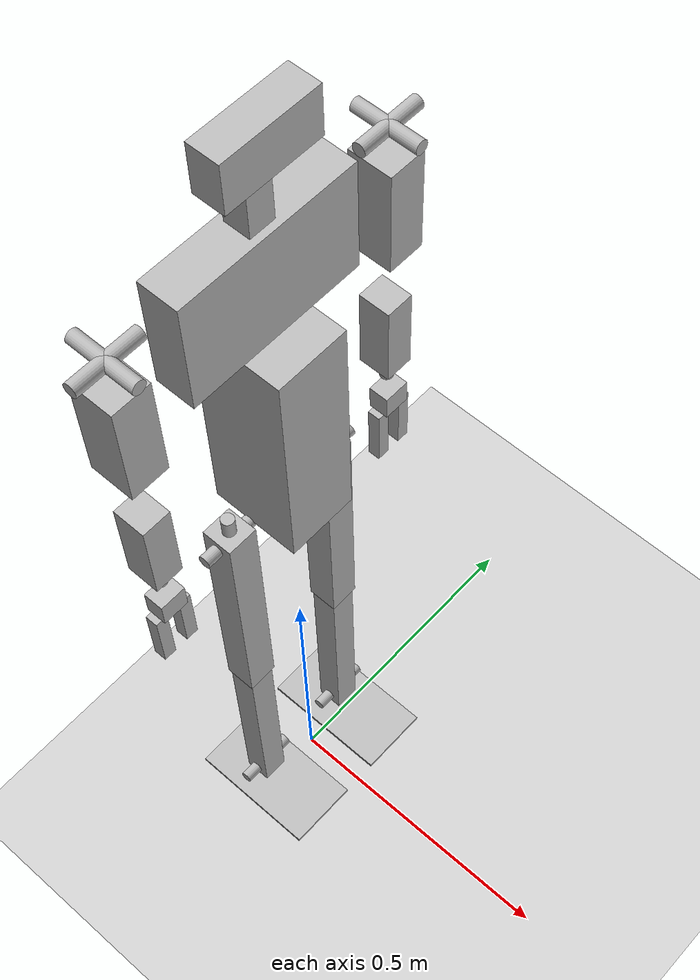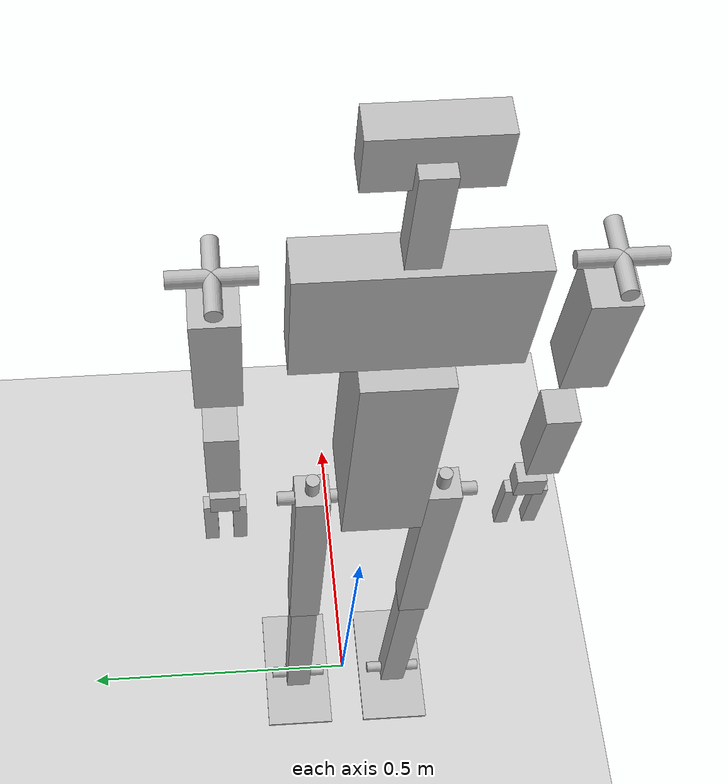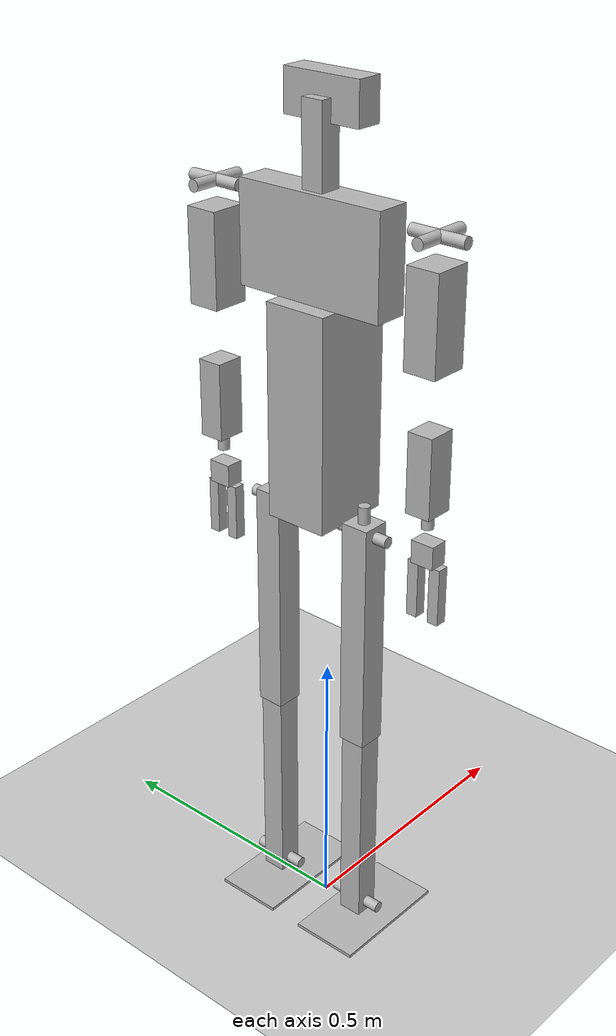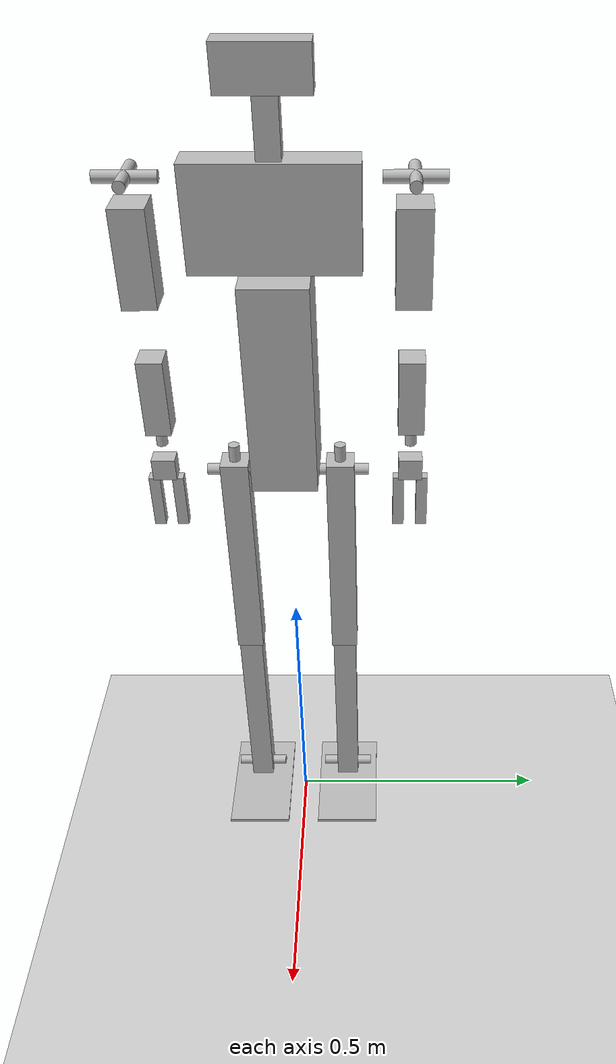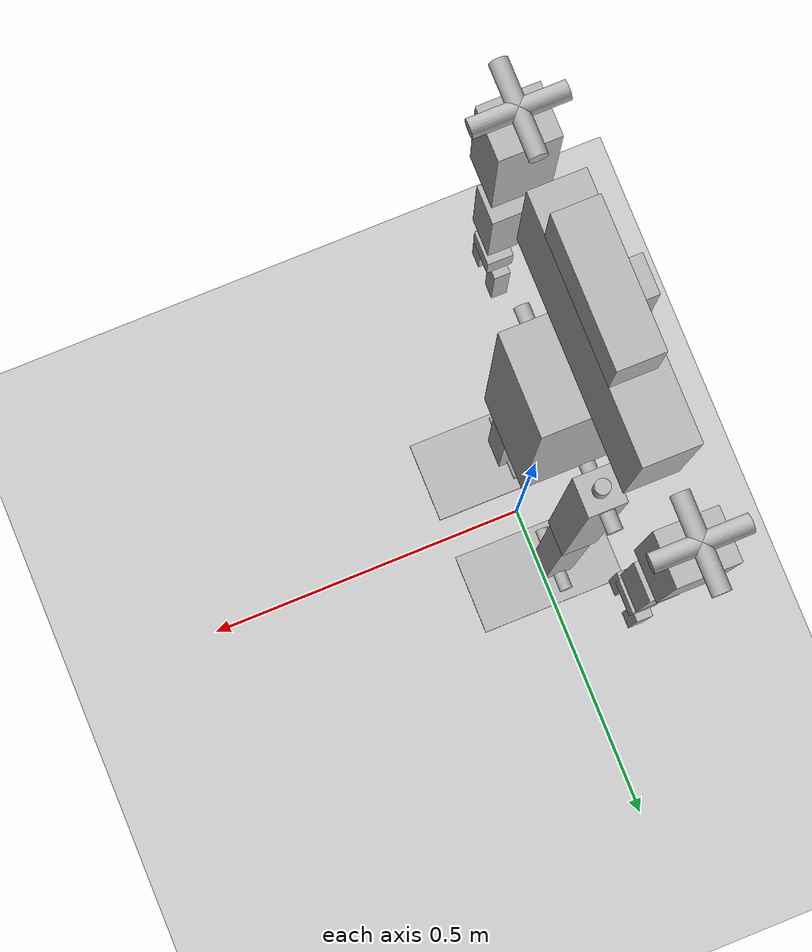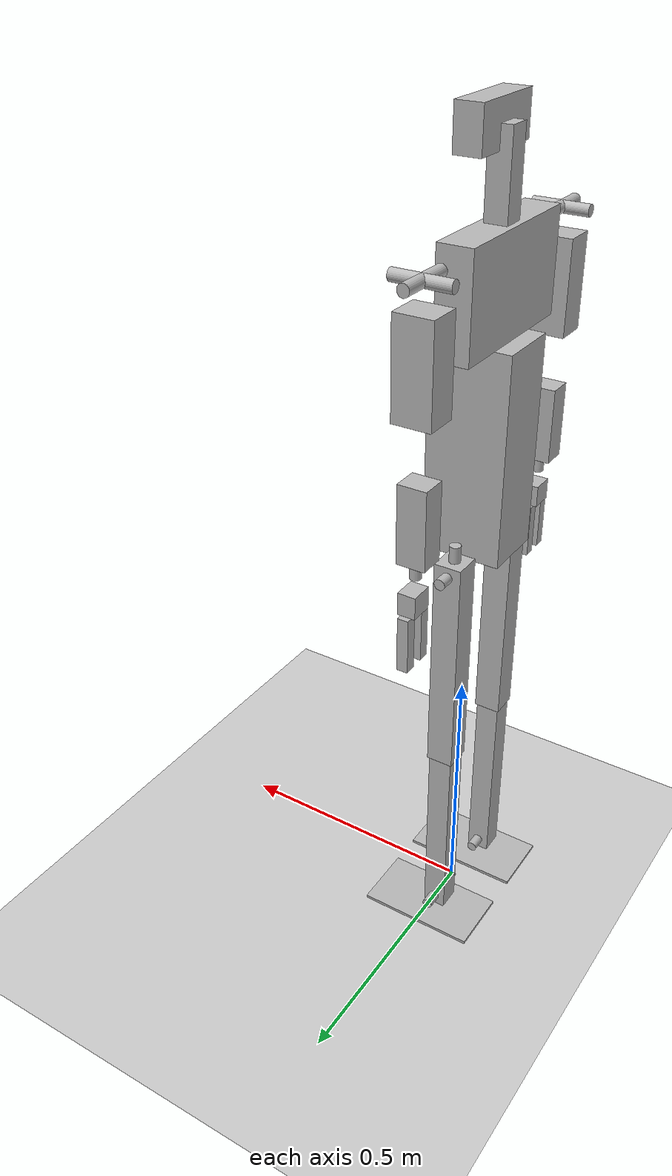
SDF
<?xml version="1.0" ?>
<sdf version="1.4">
<world name="default">

<plugin name="gz_world_manager" filename="libgz_world_manager.so" />

<physics type="ode">
	<gravity>0 0 -9.81</gravity>
	<ode>
		<solver>
			<type>quick</type>
			<iters>90</iters>
			<sor>1.2</sor>
		</solver>
		<constraints>
			<cfm>0.0</cfm>
			<erp>0.2</erp>
			<contact_max_correcting_vel>100.0</contact_max_correcting_vel>
			<contact_surface_layer>0.0</contact_surface_layer>
		</constraints>
	</ode>
	<real_time_update_rate>-1</real_time_update_rate>
	<max_step_size>0.000334</max_step_size>
</physics>

<!-- A ground plane -->
<include>
  <uri>model://ground_plane</uri>
</include>

<!-- A global light source -->
<include>
  <uri>model://sun</uri>
</include>

<include>
  <uri>model://ash</uri>
</include>

</world>
</sdf>

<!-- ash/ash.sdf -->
<sdf version="1.4">
<model name="ash">
	<plugin name="gz_comms_manager" filename="libgz_comms_manager.so" />
	<pose>0 0 0 0 0 0</pose>
	<static>false</static>
	<link name="torso">
		<pose>-.01 0 .997 0 0 0</pose>
		<collision name="torso_collision">
			<geometry>
				<box>
					<size>.143 .114 .367</size>
				</box>
			</geometry>
		</collision>
		<visual name="torso_visual">
			<geometry>
				<box>
					<size>.143 .114 .367</size>
				</box>
			</geometry>
		</visual>
		<inertial>
			<pose>-0.007635463 0.000532902 0.011170676 0 0 0</pose>
			<mass>8.929601491</mass>
			<inertia>
				<ixx>0.160370285</ixx>
				<iyy>0.112425821</iyy>
				<izz>0.106598912</izz>
				<iyz>0.000392533</iyz>
				<ixz>-0.002028322</ixz>
				<ixy>0.000446463</ixy>
			</inertia>
		</inertial>
		<sensor name="imu_sensor" type="imu">
			<always_on>1</always_on>
			<visualize>1</visualize>
			<topic>imu_sensor</topic>
		</sensor>
	</link>

	<link name="l_thigh">
		<pose>-.021 .094 .618 0 0 0</pose>
		<collision name="l_thigh_collision">
			<geometry>
				<box>
					<size>.05 .05 .419</size>
				</box>
			</geometry>
		</collision>
		<visual name="l_thigh_visual">
			<geometry>
				<box>
					<size>.05 .05 .419</size>
				</box>
			</geometry>
		</visual>
		<inertial>
			<pose>-0.011097569 0.018874678 0.032768668 0 0 0</pose>
			<mass>2.298881991</mass>
			<inertia>
				<ixx>0.021768307</ixx>
				<iyy>0.024906869</iyy>
				<izz>0.008717440</izz>
				<iyz>-0.001607937</iyz>
				<ixz>-0.001277535</ixz>
				<ixy>-0.002003306</ixy>
			</inertia>
		</inertial>
	</link>

	<link name="r_thigh">
		<pose>-.021 -.094 .618 0 0 0</pose>
		<collision name="r_thigh_collision">
			<geometry>
				<box>
					<size>.05 .05 .419</size>
				</box>
			</geometry>
		</collision>
		<visual name="r_thigh_visual">
			<geometry>
				<box>
					<size>.05 .05 .419</size>
				</box>
			</geometry>
		</visual>
		<inertial>
			<pose>-0.011097569 -0.018874678 0.032768668 0 0 0</pose>
			<mass>2.298881991</mass>
			<inertia>
				<ixx>0.021768307</ixx>
				<iyy>0.024906869</iyy>
				<izz>0.008717440</izz>
				<iyz>0.001607937</iyz>
				<ixz>-0.001277535</ixz>
				<ixy>0.002003306</ixy>
			</inertia>
		</inertial>
	</link>

	<link name="l_shin">
		<pose>-.021 .094 .239 0 0 0</pose>
		<collision name="l_shin_collision">
			<geometry>
				<box>
					<size>.044 .044 .42</size>
				</box>
			</geometry>
		</collision>
		<visual name="l_shin_visual">
			<geometry>
				<box>
					<size>.044 .044 .42</size>
				</box>
			</geometry>
		</visual>
		<inertial>
			<pose>-0.028153381 0.002475222 0.063721119 0 0 0</pose>
			<mass>2.239063829</mass>
			<inertia>
				<ixx>0.021743467</ixx>
				<iyy>0.027022394</iyy>
				<izz>0.010582813</izz>
				<iyz>-0.000035631</iyz>
				<ixz>0.004888637</ixz>
				<ixy>0.000055998</ixy>
			</inertia>
		</inertial>
	</link>

	<link name="r_shin">
		<pose>-.021 -.094 .239 0 0 0</pose>
		<collision name="r_shin_collision">
			<geometry>
				<box>
					<size>.044 .044 .42</size>
				</box>
			</geometry>
		</collision>
		<visual name="r_shin_visual">
			<geometry>
				<box>
					<size>.044 .044 .42</size>
				</box>
			</geometry>
		</visual>
		<inertial>
			<pose>-0.028153381 -0.002475222 0.063721119 0 0 0</pose>
			<mass>2.239063829</mass>
			<inertia>
				<ixx>0.021743467</ixx>
				<iyy>0.027022394</iyy>
				<izz>0.010582813</izz>
				<iyz>-0.000035631</iyz>
				<ixz>0.004888637</ixz>
				<ixy>0.000055998</ixy>
			</inertia>
		</inertial>
	</link>

	<link name="l_foot">
		<pose>0 .094 .003 0 0 0</pose>
		<collision name="l_foot_collision">
			<geometry>
				<box>
					<size>.23 .125 .006</size>
				</box>
			</geometry>
			<!-- From atlas model -->
			<surface>
				<friction>
					<ode>
						<mu>0.9</mu>
						<mu2>0.9</mu2>
						<fdir1>1 0 0</fdir1>
					</ode>
				</friction>
				<contact>
					<ode>
						<max_vel>1.0</max_vel>
						<min_depth>0.003</min_depth>
					</ode>
				</contact>
			</surface>
		</collision>
		<visual name="l_foot_visual">
			<geometry>
				<box>
					<size>.23 .125 .006</size>
				</box>
			</geometry>
		</visual>
		<inertial>
			<pose>-0.019883971 0.002275946 0.016387485 0 0 0</pose>
			<mass>0.589284444</mass>
			<inertia>
				<ixx>0.000545429</ixx>
				<iyy>0.001825441</iyy>
				<izz>0.002054387</izz>
				<iyz>-0.000001187</iyz>
				<ixz>-0.000179602</ixz>
				<ixy>0.000004512</ixy>
			</inertia>
		</inertial>
		<sensor name="l_foot_contact_sensor" type="contact">
			<always_on>1</always_on>
			<contact>
				<collision>l_foot_collision</collision>
			</contact>
		</sensor>
	</link>

	<link name="r_foot">
		<pose>0 -.094 .003 0 0 0</pose>
		<collision name="r_foot_collision">
			<geometry>
				<box>
					<size>.23 .125 .006</size>
				</box>
			</geometry>
			<!-- From atlas model -->
			<surface>
				<friction>
					<ode>
						<mu>0.9</mu>
						<mu2>0.9</mu2>
						<fdir1>1 0 0</fdir1>
					</ode>
				</friction>
				<contact>
					<ode>
						<max_vel>1.0</max_vel>
						<min_depth>0.003</min_depth>
					</ode>
				</contact>
			</surface>
		</collision>
		<visual name="r_foot_visual">
			<geometry>
				<box>
					<size>.23 .125 .006</size>
				</box>
			</geometry>
		</visual>
		<inertial>
			<pose>-0.019883971 -0.002275946 0.016387485 0 0 0</pose>
			<mass>0.589284444</mass>
			<inertia>
				<ixx>0.000545429</ixx>
				<iyy>0.001825441</iyy>
				<izz>0.002054387</izz>
				<iyz>-0.000001187</iyz>
				<ixz>-0.000179602</ixz>
				<ixy>0.000004512</ixy>
			</inertia>
		</inertial>
		<sensor name="r_foot_contact_sensor" type="contact">
			<always_on>1</always_on>
			<contact>
				<collision>r_foot_collision</collision>
			</contact>
		</sensor>
	</link>

	<link name="l_hip_yaw_trunnion">
		<pose>-.021 .094 .808 0 0 0</pose>
		<!-- Axis = "z", -->
		<collision name="l_hip_yaw_trunnion_collision">
			<geometry>
				<cylinder>
					<radius>0.01</radius>
					<length>0.1</length>
				</cylinder>
			</geometry>
		</collision>
		<visual name="l_hip_yaw_trunnion_visual">
			<geometry>
				<cylinder>
					<radius>0.01</radius>
					<length>0.1</length>
				</cylinder>
			</geometry>
		</visual>
		<inertial>
			<mass>0.1</mass>
			<inertia>
				<ixx>8.5833333333333e-05</ixx>
				<iyy>8.5833333333333e-05</iyy>
				<izz>5e-06</izz>
				<ixy>0</ixy>
				<ixz>0</ixz>
				<iyz>0</iyz>
			</inertia>
		</inertial>
	</link>

	<link name="r_hip_yaw_trunnion">
		<pose>-.021 -.094 .808 0 0 0</pose>
		<!-- Axis = "z", -->
		<collision name="r_hip_yaw_trunnion_collision">
			<geometry>
				<cylinder>
					<radius>0.01</radius>
					<length>0.1</length>
				</cylinder>
			</geometry>
		</collision>
		<visual name="r_hip_yaw_trunnion_visual">
			<geometry>
				<cylinder>
					<radius>0.01</radius>
					<length>0.1</length>
				</cylinder>
			</geometry>
		</visual>
		<inertial>
			<mass>0.1</mass>
			<inertia>
				<ixx>8.5833333333333e-05</ixx>
				<iyy>8.5833333333333e-05</iyy>
				<izz>5e-06</izz>
				<ixy>0</ixy>
				<ixz>0</ixz>
				<iyz>0</iyz>
			</inertia>
		</inertial>
	</link>

	<link name="l_hip_pitch_trunnion">
		<pose>-.021 .094 .808 0 0 0</pose>
		<!-- Axis = "y", -->
		<collision name="l_hip_pitch_trunnion_collision">
			<pose>0 0 0 1.57079632679 0 0</pose>
			<geometry>
				<cylinder>
					<radius>0.01</radius>
					<length>0.1</length>
				</cylinder>
			</geometry>
		</collision>
		<visual name="l_hip_pitch_trunnion_visual">
			<pose>0 0 0 1.57079632679 0 0</pose>
			<geometry>
				<cylinder>
					<radius>0.01</radius>
					<length>0.1</length>
				</cylinder>
			</geometry>
		</visual>
		<inertial>
			<mass>0.1</mass>
			<inertia>
				<ixx>8.5833333333333e-05</ixx>
				<iyy>5e-06</iyy>
				<izz>8.5833333333333e-05</izz>
				<ixy>0</ixy>
				<ixz>0</ixz>
				<iyz>0</iyz>
			</inertia>
		</inertial>
	</link>

	<link name="r_hip_pitch_trunnion">
		<pose>-.021 -.094 .808 0 0 0</pose>
		<!-- Axis = "y", -->
		<collision name="r_hip_pitch_trunnion_collision">
			<pose>0 0 0 1.57079632679 0 0</pose>
			<geometry>
				<cylinder>
					<radius>0.01</radius>
					<length>0.1</length>
				</cylinder>
			</geometry>
		</collision>
		<visual name="r_hip_pitch_trunnion_visual">
			<pose>0 0 0 1.57079632679 0 0</pose>
			<geometry>
				<cylinder>
					<radius>0.01</radius>
					<length>0.1</length>
				</cylinder>
			</geometry>
		</visual>
		<inertial>
			<mass>0.1</mass>
			<inertia>
				<ixx>8.5833333333333e-05</ixx>
				<iyy>5e-06</iyy>
				<izz>8.5833333333333e-05</izz>
				<ixy>0</ixy>
				<ixz>0</ixz>
				<iyz>0</iyz>
			</inertia>
		</inertial>
	</link>

	<link name="l_ankle_pitch_trunnion">
		<pose>-.021 .094 .049 0 0 0</pose>
		<!-- Axis = "y", -->
		<collision name="l_ankle_pitch_trunnion_collision">
			<pose>0 0 0 1.57079632679 0 0</pose>
			<geometry>
				<cylinder>
					<radius>0.01</radius>
					<length>0.1</length>
				</cylinder>
			</geometry>
		</collision>
		<visual name="l_ankle_pitch_trunnion_visual">
			<pose>0 0 0 1.57079632679 0 0</pose>
			<geometry>
				<cylinder>
					<radius>0.01</radius>
					<length>0.1</length>
				</cylinder>
			</geometry>
		</visual>
		<inertial>
			<mass>0.1</mass>
			<inertia>
				<ixx>8.5833333333333e-05</ixx>
				<iyy>5e-06</iyy>
				<izz>8.5833333333333e-05</izz>
				<ixy>0</ixy>
				<ixz>0</ixz>
				<iyz>0</iyz>
			</inertia>
		</inertial>
	</link>

	<link name="r_ankle_pitch_trunnion">
		<pose>-.021 -.094 .049 0 0 0</pose>
		<!-- Axis = "y", -->
		<collision name="r_ankle_pitch_trunnion_collision">
			<pose>0 0 0 1.57079632679 0 0</pose>
			<geometry>
				<cylinder>
					<radius>0.01</radius>
					<length>0.1</length>
				</cylinder>
			</geometry>
		</collision>
		<visual name="r_ankle_pitch_trunnion_visual">
			<pose>0 0 0 1.57079632679 0 0</pose>
			<geometry>
				<cylinder>
					<radius>0.01</radius>
					<length>0.1</length>
				</cylinder>
			</geometry>
		</visual>
		<inertial>
			<mass>0.1</mass>
			<inertia>
				<ixx>8.5833333333333e-05</ixx>
				<iyy>5e-06</iyy>
				<izz>8.5833333333333e-05</izz>
				<ixy>0</ixy>
				<ixz>0</ixz>
				<iyz>0</iyz>
			</inertia>
		</inertial>
	</link>

	<joint name="l_hip_yaw" type="revolute">
		<parent>
			torso
		</parent>
		<child>
			l_hip_yaw_trunnion
		</child>
		<axis>
			<xyz>0 0 1</xyz>
			<limit>
				<lower>-0.436332313</lower>
				<upper>0.1745329252</upper>
				<effort>300</effort>
				<velocity>12</velocity>
			</limit>
			<dynamics>
				<damping>1.0</damping>
				<friction>0</friction>
			</dynamics>
		</axis>
		<physics>
			<ode>
				<cfm_damping>1</cfm_damping>
			</ode>
		</physics>
	</joint>

	<joint name="r_hip_yaw" type="revolute">
		<parent>
			torso
		</parent>
		<child>
			r_hip_yaw_trunnion
		</child>
		<axis>
			<xyz>0 0 1</xyz>
			<limit>
				<lower>-0.436332313</lower>
				<upper>0.1745329252</upper>
				<effort>300</effort>
				<velocity>12</velocity>
			</limit>
			<dynamics>
				<damping>1.0</damping>
				<friction>0</friction>
			</dynamics>
		</axis>
		<physics>
			<ode>
				<cfm_damping>1</cfm_damping>
			</ode>
		</physics>
	</joint>

	<joint name="l_hip_roll" type="revolute">
		<parent>
			l_hip_yaw_trunnion
		</parent>
		<child>
			l_hip_pitch_trunnion
		</child>
		<axis>
			<xyz>1 0 0</xyz>
			<limit>
				<lower>-0.401425728</lower>
				<upper>0.401425728</upper>
				<effort>300</effort>
				<velocity>12</velocity>
			</limit>
			<dynamics>
				<damping>1.0</damping>
				<friction>0</friction>
			</dynamics>
		</axis>
		<physics>
			<ode>
				<cfm_damping>1</cfm_damping>
			</ode>
		</physics>
	</joint>

	<joint name="r_hip_roll" type="revolute">
		<parent>
			r_hip_yaw_trunnion
		</parent>
		<child>
			r_hip_pitch_trunnion
		</child>
		<axis>
			<xyz>1 0 0</xyz>
			<limit>
				<lower>-0.401425728</lower>
				<upper>0.401425728</upper>
				<effort>300</effort>
				<velocity>12</velocity>
			</limit>
			<dynamics>
				<damping>1.0</damping>
				<friction>0</friction>
			</dynamics>
		</axis>
		<physics>
			<ode>
				<cfm_damping>1</cfm_damping>
			</ode>
		</physics>
	</joint>

	<joint name="l_hip_pitch" type="revolute">
		<!-- thigh pose: -.021 .094 .618 0 0 0 -->
		<!-- desired pose: -.021 .094 .808 0 0 0 -->
		<pose>0 0 .19 0 0 0</pose>
		<parent>
			l_hip_pitch_trunnion
		</parent>
		<child>
			l_thigh
		</child>
		<axis>
			<xyz>0 1 0</xyz>
			<limit>
				<lower>-0.7853981634</lower>
				<upper>0.7853981634</upper>
				<effort>300</effort>
				<velocity>12</velocity>
			</limit>
			<dynamics>
				<damping>1.0</damping>
				<friction>0</friction>
			</dynamics>
		</axis>
		<physics>
			<ode>
				<cfm_damping>1</cfm_damping>
			</ode>
		</physics>
	</joint>

	<joint name="r_hip_pitch" type="revolute">
		<!-- thigh pose: -.021 -.094 .618 0 0 0 -->
		<!-- desired pose: -.021 -.094 .808 0 0 0 -->
		<pose>0 0 .19 0 0 0</pose>
		<parent>
			r_hip_pitch_trunnion
		</parent>
		<child>
			r_thigh
		</child>
		<axis>
			<xyz>0 1 0</xyz>
			<limit>
				<lower>-0.7853981634</lower>
				<upper>0.7853981634</upper>
				<effort>300</effort>
				<velocity>12</velocity>
			</limit>
			<dynamics>
				<damping>1.0</damping>
				<friction>0</friction>
			</dynamics>
		</axis>
		<physics>
			<ode>
				<cfm_damping>1</cfm_damping>
			</ode>
		</physics>
	</joint>

	<joint name="l_knee_pitch" type="revolute">
		<!-- shin pose: -.021 .094 .239 0 0 0 -->
		<!-- desired pose: -.021 .094 .429 0 0 0 -->
		<pose>0 0 .19 0 0 0</pose>
		<parent>
			l_thigh
		</parent>
		<child>
			l_shin
		</child>
		<axis>
			<xyz>0 1 0</xyz>
			<limit>
				<lower>0</lower>
				<upper>1.5707963268</upper>
				<effort>300</effort>
				<velocity>12</velocity>
			</limit>
			<dynamics>
				<damping>1.0</damping>
				<friction>0</friction>
			</dynamics>
		</axis>
		<physics>
			<ode>
				<cfm_damping>1</cfm_damping>
			</ode>
		</physics>
	</joint>

	<joint name="r_knee_pitch" type="revolute">
		<!-- shin pose: -.021 -.094 .239 0 0 0 -->
		<!-- desired pose: -.021 -.094 .429 0 0 0 -->
		<pose>0 0 .19 0 0 0</pose>
		<parent>
			r_thigh
		</parent>
		<child>
			r_shin
		</child>
		<axis>
			<xyz>0 1 0</xyz>
			<limit>
				<lower>0</lower>
				<upper>1.5707963268</upper>
				<effort>300</effort>
				<velocity>12</velocity>
			</limit>
			<dynamics>
				<damping>1.0</damping>
				<friction>0</friction>
			</dynamics>
		</axis>
		<physics>
			<ode>
				<cfm_damping>1</cfm_damping>
			</ode>
		</physics>
	</joint>

	<joint name="l_ankle_pitch" type="revolute">
		<parent>
			l_shin
		</parent>
		<child>
			l_ankle_pitch_trunnion
		</child>
		<axis>
			<xyz>0 1 0</xyz>
			<limit>
				<lower>-0.6981317008</lower>
				<upper>0.872664626</upper>
				<effort>300</effort>
				<velocity>12</velocity>
			</limit>
			<dynamics>
				<damping>1.0</damping>
				<friction>0</friction>
			</dynamics>
		</axis>
		<physics>
			<ode>
				<cfm_damping>1</cfm_damping>
			</ode>
		</physics>
	</joint>

	<joint name="r_ankle_pitch" type="revolute">
		<parent>
			r_shin
		</parent>
		<child>
			r_ankle_pitch_trunnion
		</child>
		<axis>
			<xyz>0 1 0</xyz>
			<limit>
				<lower>-0.6981317008</lower>
				<upper>0.872664626</upper>
				<effort>300</effort>
				<velocity>12</velocity>
			</limit>
			<dynamics>
				<damping>1.0</damping>
				<friction>0</friction>
			</dynamics>
		</axis>
		<physics>
			<ode>
				<cfm_damping>1</cfm_damping>
			</ode>
		</physics>
	</joint>

	<joint name="l_ankle_roll" type="revolute">
		<!-- ankle pose: 0 .094 .003 0 0 0 -->
		<!-- desired pose: -.021 .094 .049 0 0 0 -->
		<pose>-.021 0 .046 0 0 0</pose>
		<parent>
			l_ankle_pitch_trunnion
		</parent>
		<child>
			l_foot
		</child>
		<axis>
			<xyz>1 0 0</xyz>
			<limit>
				<lower>-0.3490658504</lower>
				<upper>0.3490658504</upper>
				<effort>300</effort>
				<velocity>12</velocity>
			</limit>
			<dynamics>
				<damping>1.0</damping>
				<friction>0</friction>
			</dynamics>
		</axis>
		<physics>
			<ode>
				<cfm_damping>1</cfm_damping>
				<provide_feedback>1</provide_feedback>
			</ode>
		</physics>
	</joint>

	<joint name="r_ankle_roll" type="revolute">
		<!-- ankle pose: 0 -.094 .003 0 0 0 -->
		<!-- desired pose: -.021 -.094 .049 0 0 0 -->
		<pose>-.021 0 .046 0 0 0</pose>
		<parent>
			r_ankle_pitch_trunnion
		</parent>
		<child>
			r_foot
		</child>
		<axis>
			<xyz>1 0 0</xyz>
			<limit>
				<lower>-0.3490658504</lower>
				<upper>0.3490658504</upper>
				<effort>300</effort>
				<velocity>12</velocity>
			</limit>
			<dynamics>
				<damping>1.0</damping>
				<friction>0</friction>
			</dynamics>
		</axis>
		<physics>
			<ode>
				<cfm_damping>1</cfm_damping>
				<provide_feedback>1</provide_feedback>
			</ode>
		</physics>
	</joint>

	<joint name="waist_yaw" type="revolute">
		<pose>-.0033 0 -.0862 0 0 0</pose>
		<parent>
			torso
		</parent>
		<child>
			chest
		</child>
		<axis>
			<xyz>0 0 1</xyz>
			<limit>
				<lower>-1.5707963268</lower>
				<upper>1.5707963268</upper>
				<effort>300</effort>
				<velocity>12</velocity>
			</limit>
			<dynamics>
				<damping>1.0</damping>
				<friction>0</friction>
			</dynamics>
		</axis>
		<physics>
			<ode>
				<cfm_damping>1</cfm_damping>
			</ode>
		</physics>
	</joint>

	<link name="chest">
		<pose>-.022 0 1.266 0 0 0</pose>
		<collision name="chest_collision">
			<geometry>
				<box>
					<size>.06 .276 .171</size>
				</box>
			</geometry>
		</collision>
		<visual name="chest_visual">
			<geometry>
				<box>
					<size>.06 .276 .171</size>
				</box>
			</geometry>
		</visual>
		<inertial>
			<pose>-0.019417928 -0.002447367 0.035158538 0 0 0</pose>
			<mass>5.451191007</mass>
			<inertia>
				<ixx>0.047808951</ixx>
				<iyy>0.023527273</iyy>
				<izz>0.046595768</izz>
				<iyz>-0.000065729</iyz>
				<ixz>0.000927517</ixz>
				<ixy>0.000607106</ixy>
			</inertia>
		</inertial>
		<sensor name="lidar_sensor1" type="ray">
			<!-- Hokuyo UTM-30LX-EW -->
			<always_on>1</always_on>
			<update_rate>10</update_rate>
			<pose>.0565 0 1.277 0 0 0</pose>
			<ray>
				<scan>
					<horizontal>
						<samples>1080</samples>
						<resolution>1</resolution>
						<min_angle>-2.35619449</min_angle>
						<max_angle>2.35619449</max_angle>
					</horizontal>
				</scan>
				<range>
					<min>.1</min>
					<max>60</max>
					<resolution>.05</resolution>
				</range>
			</ray>
			<plugin name="gz_lidar_dump" filename="libgz_lidar_dump.so" />
		</sensor>
		<sensor name="camera_sensor1" type="camera">
			<pose>0 0 0.5 0 0 1.57</pose>
			<camera>
				<horizontal_fov>1.57</horizontal_fov>
				<image>
					<width>640</width>
					<height>480</height>
					<format>R8G8B8</format>
				</image>
				<clip>
					<near>0.5</near>
					<far>5</far>
				</clip>
			</camera>
			<plugin name="gz_camera_dump" filename="libgz_camera_dump.so" />
			<always_on>1</always_on>
			<update_rate>10</update_rate>
		</sensor>
	</link>

	<joint name="head_yaw" type="revolute">
		<pose>-.0033 0 -.0672 0 0 0</pose>
		<parent>
			chest
		</parent>
		<child>
			neck
		</child>
		<axis>
			<xyz>0 0 1</xyz>
			<limit>
				<lower>-1.5707963268</lower>
				<upper>1.5707963268</upper>
				<effort>300</effort>
				<velocity>12</velocity>
			</limit>
			<dynamics>
				<damping>1.0</damping>
				<friction>0</friction>
			</dynamics>
		</axis>
		<physics>
			<ode>
				<cfm_damping>1</cfm_damping>
			</ode>
		</physics>
	</joint>

	<link name="neck">
		<pose>-.022 0 1.419 0 0 0</pose>
		<collision name="neck_collision">
			<geometry>
				<box>
					<size>.039 .039 .135</size>
				</box>
			</geometry>
		</collision>
		<visual name="neck_visual">
			<geometry>
				<box>
					<size>.039 .039 .135</size>
				</box>
			</geometry>
		</visual>
		<inertial>
			<pose>0.002062353 -0.001514090 0.066856504 0 0 0</pose>
			<mass>0.322276395</mass>
			<inertia>
				<ixx>0.000216899</ixx>
				<iyy>0.000157889</iyy>
				<izz>0.000142469</izz>
				<iyz>-0.000002022</iyz>
				<ixz>0.000000187</ixz>
				<ixy>-0.000000522</ixy>
			</inertia>
		</inertial>
	</link>

	<joint name="head_pitch" type="revolute">
		<pose>-.034 0 -0.0567 0 0 0</pose>
		<parent>
			neck
		</parent>
		<child>
			head
		</child>
		<axis>
			<xyz>0 1 0</xyz>
			<limit>
				<lower>-1.0471975512</lower>
				<upper>1.0471975512</upper>
				<effort>300</effort>
				<velocity>12</velocity>
			</limit>
			<dynamics>
				<damping>1.0</damping>
				<friction>0</friction>
			</dynamics>
		</axis>
		<physics>
			<ode>
				<cfm_damping>1</cfm_damping>
			</ode>
		</physics>
	</joint>

	<link name="head">
		<pose>.001 0 1.485 0 0 0</pose>
		<collision name="head_collision">
			<geometry>
				<box>
					<size>.046 .144 .07</size>
				</box>
			</geometry>
		</collision>
		<visual name="head_visual">
			<geometry>
				<box>
					<size>.046 .144 .07</size>
				</box>
			</geometry>
		</visual>
		<inertial>
			<pose>0.006972587 -0.000000037 0.046796053 0 0 0</pose>
			<mass>0.078283874</mass>
			<inertia>
				<ixx>0.000133507</ixx>
				<iyy>0.000048991</iyy>
				<izz>0.000134033</izz>
				<iyz>0.000000000</iyz>
				<ixz>0.000013453</ixz>
				<ixy>0.000000000</ixy>
			</inertia>
		</inertial>
	</link>

	<joint name="l_shoulder_pitch" type="revolute">
		<parent>
			chest
		</parent>
		<child>
			l_shoulder_pitch_trunnion
		</child>
		<axis>
			<xyz>0 1 0</xyz>
			<limit>
				<lower>-3.1415926536</lower>
				<upper>3.1415926536</upper>
				<effort>300</effort>
				<velocity>12</velocity>
			</limit>
			<dynamics>
				<damping>1.0</damping>
				<friction>0</friction>
			</dynamics>
		</axis>
		<physics>
			<ode>
				<cfm_damping>1</cfm_damping>
			</ode>
		</physics>
	</joint>

	<joint name="r_shoulder_pitch" type="revolute">
		<parent>
			chest
		</parent>
		<child>
			r_shoulder_pitch_trunnion
		</child>
		<axis>
			<xyz>0 1 0</xyz>
			<limit>
				<lower>-3.1415926536</lower>
				<upper>3.1415926536</upper>
				<effort>300</effort>
				<velocity>12</velocity>
			</limit>
			<dynamics>
				<damping>1.0</damping>
				<friction>0</friction>
			</dynamics>
		</axis>
		<physics>
			<ode>
				<cfm_damping>1</cfm_damping>
			</ode>
		</physics>
	</joint>

	<link name="l_shoulder_pitch_trunnion">
		<pose>-.019 .219 1.325 0 0 0</pose>
		<!-- Axis = "y", -->
		<collision name="l_shoulder_pitch_trunnion_collision">
			<pose>0 0 0 1.57079632679 0 0</pose>
			<geometry>
				<cylinder>
					<radius>0.01</radius>
					<length>0.1</length>
				</cylinder>
			</geometry>
		</collision>
		<visual name="l_shoulder_pitch_trunnion_visual">
			<pose>0 0 0 1.57079632679 0 0</pose>
			<geometry>
				<cylinder>
					<radius>0.01</radius>
					<length>0.1</length>
				</cylinder>
			</geometry>
		</visual>
		<inertial>
			<mass>0.1</mass>
			<inertia>
				<ixx>8.5833333333333e-05</ixx>
				<iyy>5e-06</iyy>
				<izz>8.5833333333333e-05</izz>
				<ixy>0</ixy>
				<ixz>0</ixz>
				<iyz>0</iyz>
			</inertia>
		</inertial>
	</link>

	<link name="r_shoulder_pitch_trunnion">
		<pose>-.019 -.219 1.325 0 0 0</pose>
		<!-- Axis = "y", -->
		<collision name="r_shoulder_pitch_trunnion_collision">
			<pose>0 0 0 1.57079632679 0 0</pose>
			<geometry>
				<cylinder>
					<radius>0.01</radius>
					<length>0.1</length>
				</cylinder>
			</geometry>
		</collision>
		<visual name="r_shoulder_pitch_trunnion_visual">
			<pose>0 0 0 1.57079632679 0 0</pose>
			<geometry>
				<cylinder>
					<radius>0.01</radius>
					<length>0.1</length>
				</cylinder>
			</geometry>
		</visual>
		<inertial>
			<mass>0.1</mass>
			<inertia>
				<ixx>8.5833333333333e-05</ixx>
				<iyy>5e-06</iyy>
				<izz>8.5833333333333e-05</izz>
				<ixy>0</ixy>
				<ixz>0</ixz>
				<iyz>0</iyz>
			</inertia>
		</inertial>
	</link>

	<joint name="l_shoulder_roll" type="revolute">
		<parent>
			l_shoulder_pitch_trunnion
		</parent>
		<child>
			l_shoulder_roll_trunnion
		</child>
		<axis>
			<xyz>1 0 0</xyz>
			<limit>
				<lower>-3.1415926536</lower>
				<upper>3.1415926536</upper>
				<effort>300</effort>
				<velocity>12</velocity>
			</limit>
			<dynamics>
				<damping>1.0</damping>
				<friction>0</friction>
			</dynamics>
		</axis>
		<physics>
			<ode>
				<cfm_damping>1</cfm_damping>
			</ode>
		</physics>
	</joint>

	<joint name="r_shoulder_roll" type="revolute">
		<parent>
			r_shoulder_pitch_trunnion
		</parent>
		<child>
			r_shoulder_roll_trunnion
		</child>
		<axis>
			<xyz>1 0 0</xyz>
			<limit>
				<lower>-3.1415926536</lower>
				<upper>3.1415926536</upper>
				<effort>300</effort>
				<velocity>12</velocity>
			</limit>
			<dynamics>
				<damping>1.0</damping>
				<friction>0</friction>
			</dynamics>
		</axis>
		<physics>
			<ode>
				<cfm_damping>1</cfm_damping>
			</ode>
		</physics>
	</joint>

	<link name="l_shoulder_roll_trunnion">
		<pose>-.019 .219 1.325 0 0 0</pose>
		<!-- Axis = "x", -->
		<collision name="l_shoulder_roll_trunnion_collision">
			<pose>0 0 0 0 1.57079632679 0</pose>
			<geometry>
				<cylinder>
					<radius>0.01</radius>
					<length>0.1</length>
				</cylinder>
			</geometry>
		</collision>
		<visual name="l_shoulder_roll_trunnion_visual">
			<pose>0 0 0 0 1.57079632679 0</pose>
			<geometry>
				<cylinder>
					<radius>0.01</radius>
					<length>0.1</length>
				</cylinder>
			</geometry>
		</visual>
		<inertial>
			<mass>0.1</mass>
			<inertia>
				<ixx>5e-06</ixx>
				<iyy>8.5833333333333e-05</iyy>
				<izz>8.5833333333333e-05</izz>
				<ixy>0</ixy>
				<ixz>0</ixz>
				<iyz>0</iyz>
			</inertia>
		</inertial>
	</link>

	<link name="r_shoulder_roll_trunnion">
		<pose>-.019 -.219 1.325 0 0 0</pose>
		<!-- Axis = "x", -->
		<collision name="r_shoulder_roll_trunnion_collision">
			<pose>0 0 0 0 1.57079632679 0</pose>
			<geometry>
				<cylinder>
					<radius>0.01</radius>
					<length>0.1</length>
				</cylinder>
			</geometry>
		</collision>
		<visual name="r_shoulder_roll_trunnion_visual">
			<pose>0 0 0 0 1.57079632679 0</pose>
			<geometry>
				<cylinder>
					<radius>0.01</radius>
					<length>0.1</length>
				</cylinder>
			</geometry>
		</visual>
		<inertial>
			<mass>0.1</mass>
			<inertia>
				<ixx>5e-06</ixx>
				<iyy>8.5833333333333e-05</iyy>
				<izz>8.5833333333333e-05</izz>
				<ixy>0</ixy>
				<ixz>0</ixz>
				<iyz>0</iyz>
			</inertia>
		</inertial>
	</link>

	<joint name="l_shoulder_yaw" type="revolute">
		<pose>-.0033 0 .1203 0 0 0</pose>
		<parent>
			l_shoulder_roll_trunnion
		</parent>
		<child>
			l_arm
		</child>
		<axis>
			<xyz>0 0 1</xyz>
			<limit>
				<lower>-3.1415926536</lower>
				<upper>3.1415926536</upper>
				<effort>300</effort>
				<velocity>12</velocity>
			</limit>
			<dynamics>
				<damping>1.0</damping>
				<friction>0</friction>
			</dynamics>
		</axis>
		<physics>
			<ode>
				<cfm_damping>1</cfm_damping>
			</ode>
		</physics>
	</joint>

	<joint name="r_shoulder_yaw" type="revolute">
		<pose>-.0033 0 .1203 0 0 0</pose>
		<parent>
			r_shoulder_roll_trunnion
		</parent>
		<child>
			r_arm
		</child>
		<axis>
			<xyz>0 0 1</xyz>
			<limit>
				<lower>-3.1415926536</lower>
				<upper>3.1415926536</upper>
				<effort>300</effort>
				<velocity>12</velocity>
			</limit>
			<dynamics>
				<damping>1.0</damping>
				<friction>0</friction>
			</dynamics>
		</axis>
		<physics>
			<ode>
				<cfm_damping>1</cfm_damping>
			</ode>
		</physics>
	</joint>

	<link name="l_arm">
		<pose>-.022 .219 1.205 0 0 0</pose>
		<collision name="l_arm_collision">
			<geometry>
				<box>
					<size>.067 .058 .162</size>
				</box>
			</geometry>
		</collision>
		<visual name="l_arm_visual">
			<geometry>
				<box>
					<size>.067 .058 .162</size>
				</box>
			</geometry>
		</visual>
		<inertial>
			<pose>0.008753183 -0.000615575 0.012161618 0 0 0</pose>
			<mass>2.546284964</mass>
			<inertia>
				<ixx>0.027298352</ixx>
				<iyy>0.028397454</iyy>
				<izz>0.003461075</izz>
				<iyz>0.000216571</iyz>
				<ixz>-0.003096603</ixz>
				<ixy>-0.000036439</ixy>
			</inertia>
		</inertial>
	</link>

	<link name="r_arm">
		<pose>-.022 -.219 1.205 0 0 0</pose>
		<collision name="r_arm_collision">
			<geometry>
				<box>
					<size>.067 .058 .162</size>
				</box>
			</geometry>
		</collision>
		<visual name="r_arm_visual">
			<geometry>
				<box>
					<size>.067 .058 .162</size>
				</box>
			</geometry>
		</visual>
		<inertial>
			<pose>0.008753183 0.000615575 0.012161618 0 0 0</pose>
			<mass>2.546284964</mass>
			<inertia>
				<ixx>0.027298352</ixx>
				<iyy>0.028397454</iyy>
				<izz>0.003461075</izz>
				<iyz>0.000216571</iyz>
				<ixz>-0.003096603</ixz>
				<ixy>-0.000036439</ixy>
			</inertia>
		</inertial>
	</link>

	<joint name="l_elbow_pitch" type="revolute">
		<pose>.0265 0 .1189 0 0 0</pose>
		<parent>
			l_arm
		</parent>
		<child>
			l_forearm
		</child>
		<axis>
			<xyz>0 1 0</xyz>
			<limit>
				<lower>-2.7925268032</lower>
				<upper>0.7853981634</upper>
				<effort>300</effort>
				<velocity>12</velocity>
			</limit>
			<dynamics>
				<damping>1.0</damping>
				<friction>0</friction>
			</dynamics>
		</axis>
		<physics>
			<ode>
				<cfm_damping>1</cfm_damping>
			</ode>
		</physics>
	</joint>

	<joint name="r_elbow_pitch" type="revolute">
		<pose>.0265 0 .1189 0 0 0</pose>
		<parent>
			r_arm
		</parent>
		<child>
			r_forearm
		</child>
		<axis>
			<xyz>0 1 0</xyz>
			<limit>
				<lower>-2.7925268032</lower>
				<upper>0.7853981634</upper>
				<effort>300</effort>
				<velocity>12</velocity>
			</limit>
			<dynamics>
				<damping>1.0</damping>
				<friction>0</friction>
			</dynamics>
		</axis>
		<physics>
			<ode>
				<cfm_damping>1</cfm_damping>
			</ode>
		</physics>
	</joint>

	<link name="l_forearm">
		<pose>-.022 .219 .959 0 0 0</pose>
		<collision name="l_forearm_collision">
			<geometry>
				<box>
					<size>.051 .045 .137</size>
				</box>
			</geometry>
		</collision>
		<visual name="l_forearm_visual">
			<geometry>
				<box>
					<size>.051 .045 .137</size>
				</box>
			</geometry>
		</visual>
		<inertial>
			<pose>0.001138891 0.000360798 -0.028622879 0 0 0</pose>
			<mass>0.954274172</mass>
			<inertia>
				<ixx>0.004522058</ixx>
				<iyy>0.004457692</iyy>
				<izz>0.000767547</izz>
				<iyz>0.000046156</iyz>
				<ixz>0.000082660</ixz>
				<ixy>0.000005284</ixy>
			</inertia>
		</inertial>
	</link>

	<link name="r_forearm">
		<pose>-.022 -.219 .959 0 0 0</pose>
		<collision name="r_forearm_collision">
			<geometry>
				<box>
					<size>.051 .045 .137</size>
				</box>
			</geometry>
		</collision>
		<visual name="r_forearm_visual">
			<geometry>
				<box>
					<size>.051 .045 .137</size>
				</box>
			</geometry>
		</visual>
		<inertial>
			<pose>0.001138891 -0.000360798 -0.028622879 0 0 0</pose>
			<mass>0.954274172</mass>
			<inertia>
				<ixx>0.004522058</ixx>
				<iyy>0.004457692</iyy>
				<izz>0.000767547</izz>
				<iyz>0.000046156</iyz>
				<ixz>0.000082660</ixz>
				<ixy>0.000005284</ixy>
			</inertia>
		</inertial>
	</link>

	<joint name="l_wrist_yaw" type="revolute">
		<parent>
			l_forearm
		</parent>
		<child>
			l_wrist_yaw_trunnion
		</child>
		<axis>
			<xyz>0 0 1</xyz>
			<limit>
				<lower>-3.1415926536</lower>
				<upper>3.1415926536</upper>
				<effort>300</effort>
				<velocity>12</velocity>
			</limit>
			<dynamics>
				<damping>1.0</damping>
				<friction>0</friction>
			</dynamics>
		</axis>
		<physics>
			<ode>
				<cfm_damping>1</cfm_damping>
			</ode>
		</physics>
	</joint>

	<joint name="r_wrist_yaw" type="revolute">
		<parent>
			r_forearm
		</parent>
		<child>
			r_wrist_yaw_trunnion
		</child>
		<axis>
			<xyz>0 0 1</xyz>
			<limit>
				<lower>-3.1415926536</lower>
				<upper>3.1415926536</upper>
				<effort>300</effort>
				<velocity>12</velocity>
			</limit>
			<dynamics>
				<damping>1.0</damping>
				<friction>0</friction>
			</dynamics>
		</axis>
		<physics>
			<ode>
				<cfm_damping>1</cfm_damping>
			</ode>
		</physics>
	</joint>

	<link name="l_wrist_yaw_trunnion">
		<pose>-.019 .219 .911 0 0 0</pose>
		<!-- Axis = "z", -->
		<collision name="l_wrist_yaw_trunnion_collision">
			<geometry>
				<cylinder>
					<radius>0.01</radius>
					<length>0.1</length>
				</cylinder>
			</geometry>
		</collision>
		<visual name="l_wrist_yaw_trunnion_visual">
			<geometry>
				<cylinder>
					<radius>0.01</radius>
					<length>0.1</length>
				</cylinder>
			</geometry>
		</visual>
		<inertial>
			<mass>0.1</mass>
			<inertia>
				<ixx>8.5833333333333e-05</ixx>
				<iyy>8.5833333333333e-05</iyy>
				<izz>5e-06</izz>
				<ixy>0</ixy>
				<ixz>0</ixz>
				<iyz>0</iyz>
			</inertia>
		</inertial>
	</link>

	<link name="r_wrist_yaw_trunnion">
		<pose>-.019 -.219 .911 0 0 0</pose>
		<!-- Axis = "z", -->
		<collision name="r_wrist_yaw_trunnion_collision">
			<geometry>
				<cylinder>
					<radius>0.01</radius>
					<length>0.1</length>
				</cylinder>
			</geometry>
		</collision>
		<visual name="r_wrist_yaw_trunnion_visual">
			<geometry>
				<cylinder>
					<radius>0.01</radius>
					<length>0.1</length>
				</cylinder>
			</geometry>
		</visual>
		<inertial>
			<mass>0.1</mass>
			<inertia>
				<ixx>8.5833333333333e-05</ixx>
				<iyy>8.5833333333333e-05</iyy>
				<izz>5e-06</izz>
				<ixy>0</ixy>
				<ixz>0</ixz>
				<iyz>0</iyz>
			</inertia>
		</inertial>
	</link>

	<joint name="l_wrist_roll" type="revolute">
		<pose>-.0035 0 .0369 0 0 0</pose>
		<parent>
			l_wrist_yaw_trunnion
		</parent>
		<child>
			l_palm
		</child>
		<axis>
			<xyz>1 0 0</xyz>
			<limit>
				<lower>-1.5707963268</lower>
				<upper>1.5707963268</upper>
				<effort>300</effort>
				<velocity>12</velocity>
			</limit>
			<dynamics>
				<damping>1.0</damping>
				<friction>0</friction>
			</dynamics>
		</axis>
		<physics>
			<ode>
				<cfm_damping>1</cfm_damping>
				<provide_feedback>1</provide_feedback>
			</ode>
		</physics>
	</joint>

	<joint name="r_wrist_roll" type="revolute">
		<pose>-.0035 0 .0369 0 0 0</pose>
		<parent>
			r_wrist_yaw_trunnion
		</parent>
		<child>
			r_palm
		</child>
		<axis>
			<xyz>1 0 0</xyz>
			<limit>
				<lower>-1.5707963268</lower>
				<upper>1.5707963268</upper>
				<effort>300</effort>
				<velocity>12</velocity>
			</limit>
			<dynamics>
				<damping>1.0</damping>
				<friction>0</friction>
			</dynamics>
		</axis>
		<physics>
			<ode>
				<cfm_damping>1</cfm_damping>
				<provide_feedback>1</provide_feedback>
			</ode>
		</physics>
	</joint>

	<link name="l_palm">
		<pose>-.0155 .219 .8176 0 0 0</pose>
		<collision name="l_palm_collision">
			<geometry>
				<box>
					<size>.032 .042 .04</size>
				</box>
			</geometry>
		</collision>
		<visual name="l_palm_visual">
			<geometry>
				<box>
					<size>.032 .042 .04</size>
				</box>
			</geometry>
		</visual>
		<inertial>
			<!-- These are the inertial properties of the hand, but we're storing them in the palm -->
			<pose>-0.00205945 -0.008320704 -0.077237812 0 0 0</pose>
			<mass>1.806862292</mass>
			<inertia>
				<ixx>0.004066589</ixx>
				<iyy>0.003641897</iyy>
				<izz>0.001946432</izz>
				<iyz>0.000595144</iyz>
				<ixz>-0.000050170</ixz>
				<ixy>0.000086968</ixy>
			</inertia>
		</inertial>
	</link>

	<link name="r_palm">
		<pose>-.0155 -.219 .8176 0 0 0</pose>
		<collision name="r_palm_collision">
			<geometry>
				<box>
					<size>.032 .042 .04</size>
				</box>
			</geometry>
		</collision>
		<visual name="r_palm_visual">
			<geometry>
				<box>
					<size>.032 .042 .04</size>
				</box>
			</geometry>
		</visual>
		<inertial>
			<!-- These are the inertial properties of the hand, but we're storing them in the palm -->
			<pose>-0.00205945 0.008320704 -0.077237812 0 0 0</pose>
			<mass>1.806862292</mass>
			<inertia>
				<ixx>0.004066589</ixx>
				<iyy>0.003641897</iyy>
				<izz>0.001946432</izz>
				<iyz>0.000595144</iyz>
				<ixz>-0.000050170</ixz>
				<ixy>0.000086968</ixy>
			</inertia>
		</inertial>
	</link>

	<joint name="l_gripper" type="revolute">
		<pose>0 0 .05 0 0 0</pose>
		<parent>
			l_palm
		</parent>
		<child>
			l_gripper_link
		</child>
		<axis>
			<xyz>1 0 0</xyz>
			<limit>
				<lower>-.78539816339</lower>
				<!-- Upper bound is pi/2 - arccos(.016/.1) -->
				<upper>0.160690653</upper>
				<effort>300</effort>
				<velocity>12</velocity>
			</limit>
			<dynamics>
				<damping>1.0</damping>
				<friction>0</friction>
			</dynamics>
		</axis>
		<physics>
			<ode>
				<cfm_damping>1</cfm_damping>
			</ode>
		</physics>
	</joint>

	<joint name="r_gripper" type="revolute">
		<pose>0 0 .05 0 0 0</pose>
		<parent>
			r_palm
		</parent>
		<child>
			r_gripper_link
		</child>
		<axis>
			<!-- This gripper spins the opposite way so that a positive force will close the gripper -->
			<xyz>-1 0 0</xyz>
			<limit>
				<lower>-.78539816339</lower>
				<!-- Upper bound is pi/2 - arccos(.016/.1) -->
				<upper>0.160690653</upper>
				<effort>300</effort>
				<velocity>12</velocity>
			</limit>
			<dynamics>
				<damping>1.0</damping>
				<friction>0</friction>
			</dynamics>
		</axis>
		<physics>
			<ode>
				<cfm_damping>1</cfm_damping>
			</ode>
		</physics>
	</joint>

	<link name="l_gripper_link">
		<!-- inside gripper -->
		<pose>-.0155 0.198 0.7476 0 0 0</pose>
		<self_collide>1</self_collide>
		<collision name="l_gripper_link_collision">
			<geometry>
				<box>
					<size>.02 .02 .1</size>
				</box>
			</geometry>
		</collision>
		<visual name="l_gripper_link_visual">
			<geometry>
				<box>
					<size>.02 .02 .1</size>
				</box>
			</geometry>
		</visual>
		<inertial>
			<mass>.1</mass>
			<inertia>
				<ixx>0.00008666666</ixx>
				<iyy>0.00008666666</iyy>
				<izz>0.00000666666</izz>
				<iyz>0</iyz>
				<ixz>0</ixz>
				<ixy>0</ixy>
			</inertia>
		</inertial>
	</link>

	<link name="r_gripper_link">
		<!-- inside gripper -->
		<pose>-.0155 -0.198 0.7476 0 0 0</pose>
		<self_collide>1</self_collide>
		<collision name="r_gripper_link_collision">
			<geometry>
				<box>
					<size>.02 .02 .1</size>
				</box>
			</geometry>
		</collision>
		<visual name="r_gripper_link_visual">
			<geometry>
				<box>
					<size>.02 .02 .1</size>
				</box>
			</geometry>
		</visual>
		<inertial>
			<mass>.1</mass>
			<inertia>
				<ixx>0.00008666666</ixx>
				<iyy>0.00008666666</iyy>
				<izz>0.00000666666</izz>
				<iyz>0</iyz>
				<ixz>0</ixz>
				<ixy>0</ixy>
			</inertia>
		</inertial>
	</link>

	<joint name="l_gripper_slave" type="revolute">
		<pose>0 0 .05 0 0 0</pose>
		<parent>
			l_palm
		</parent>
		<child>
			l_gripper_slave_link
		</child>
		<axis>
			<!-- This gripper spins the opposite way so that a positive force will close the gripper -->
			<xyz>-1 0 0</xyz>
			<limit>
				<lower>-.78539816339</lower>
				<!-- Upper bound is pi/2 - arccos(.016/.1) -->
				<upper>0.160690653</upper>
				<effort>300</effort>
				<velocity>12</velocity>
			</limit>
			<dynamics>
				<damping>1.0</damping>
				<friction>0</friction>
			</dynamics>
		</axis>
		<physics>
			<ode>
				<cfm_damping>1</cfm_damping>
			</ode>
		</physics>
	</joint>

	<joint name="r_gripper_slave" type="revolute">
		<pose>0 0 .05 0 0 0</pose>
		<parent>
			r_palm
		</parent>
		<child>
			r_gripper_slave_link
		</child>
		<axis>
			<xyz>1 0 0</xyz>
			<limit>
				<lower>-.78539816339</lower>
				<!-- Upper bound is pi/2 - arccos(.016/.1) -->
				<upper>0.160690653</upper>
				<effort>300</effort>
				<velocity>12</velocity>
			</limit>
			<dynamics>
				<damping>1.0</damping>
				<friction>0</friction>
			</dynamics>
		</axis>
		<physics>
			<ode>
				<cfm_damping>1</cfm_damping>
			</ode>
		</physics>
	</joint>

	<link name="l_gripper_slave_link">
		<!-- outside gripper -->
		<pose>-.0155 0.240 0.7476 0 0 0</pose>
		<self_collide>1</self_collide>
		<collision name="l_gripper_slave_link_collision">
			<geometry>
				<box>
					<size>.02 .02 .1</size>
				</box>
			</geometry>
		</collision>
		<visual name="l_gripper_slave_link_visual">
			<geometry>
				<box>
					<size>.02 .02 .1</size>
				</box>
			</geometry>
		</visual>
		<inertial>
			<mass>.1</mass>
			<inertia>
				<ixx>0.00008666666</ixx>
				<iyy>0.00008666666</iyy>
				<izz>0.00000666666</izz>
				<iyz>0</iyz>
				<ixz>0</ixz>
				<ixy>0</ixy>
			</inertia>
		</inertial>
	</link>

	<link name="r_gripper_slave_link">
		<!-- outside gripper -->
		<pose>-.0155 -0.240 0.7476 0 0 0</pose>
		<self_collide>1</self_collide>
		<collision name="r_gripper_slave_link_collision">
			<geometry>
				<box>
					<size>.02 .02 .1</size>
				</box>
			</geometry>
		</collision>
		<visual name="r_gripper_slave_link_visual">
			<geometry>
				<box>
					<size>.02 .02 .1</size>
				</box>
			</geometry>
		</visual>
		<inertial>
			<mass>.1</mass>
			<inertia>
				<ixx>0.00008666666</ixx>
				<iyy>0.00008666666</iyy>
				<izz>0.00000666666</izz>
				<iyz>0</iyz>
				<ixz>0</ixz>
				<ixy>0</ixy>
			</inertia>
		</inertial>
	</link>
</model>
</sdf>
